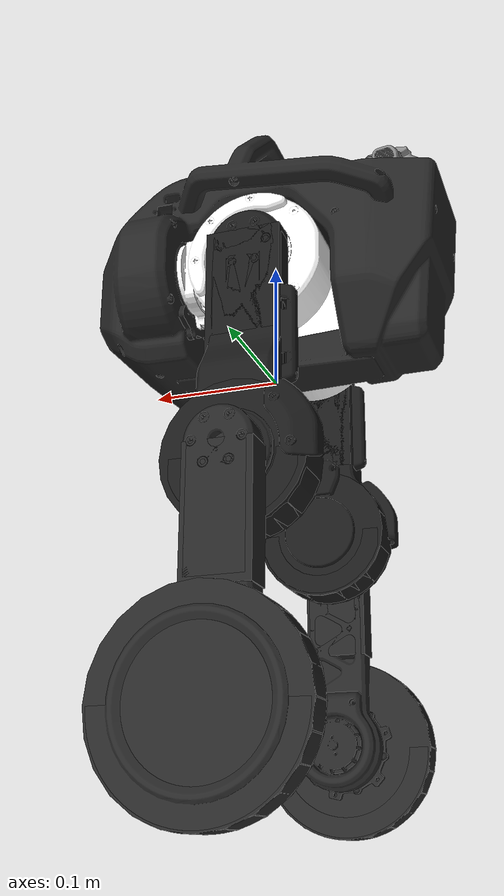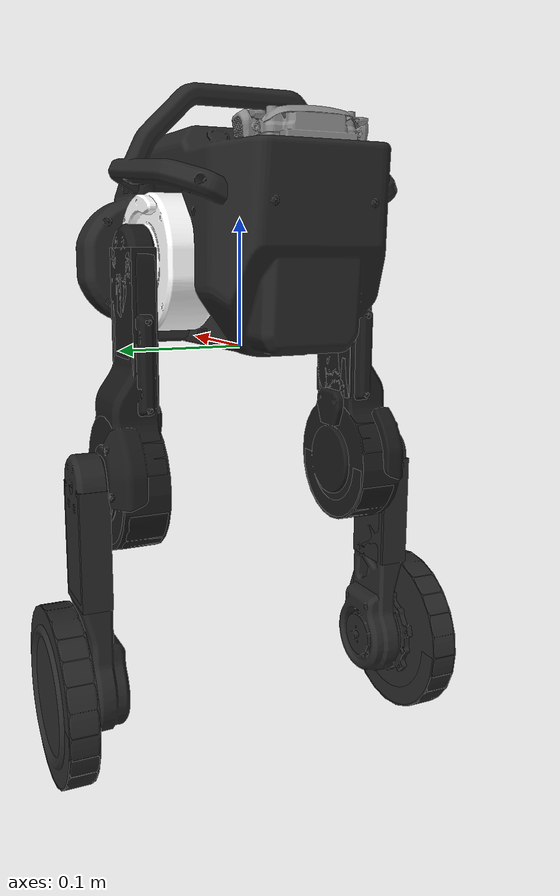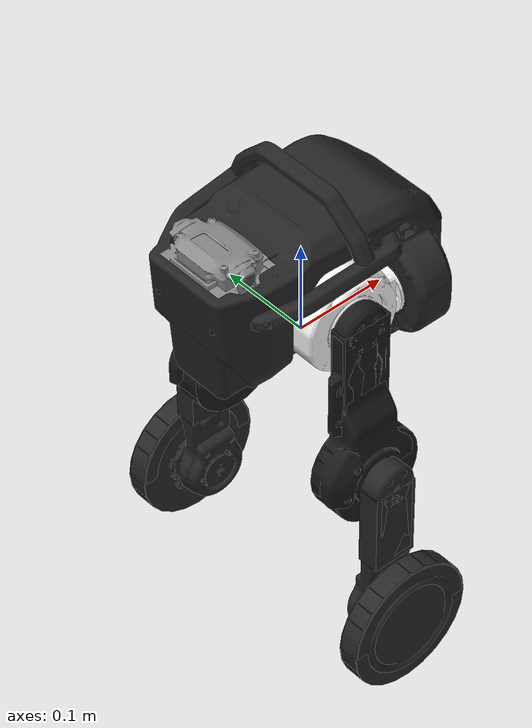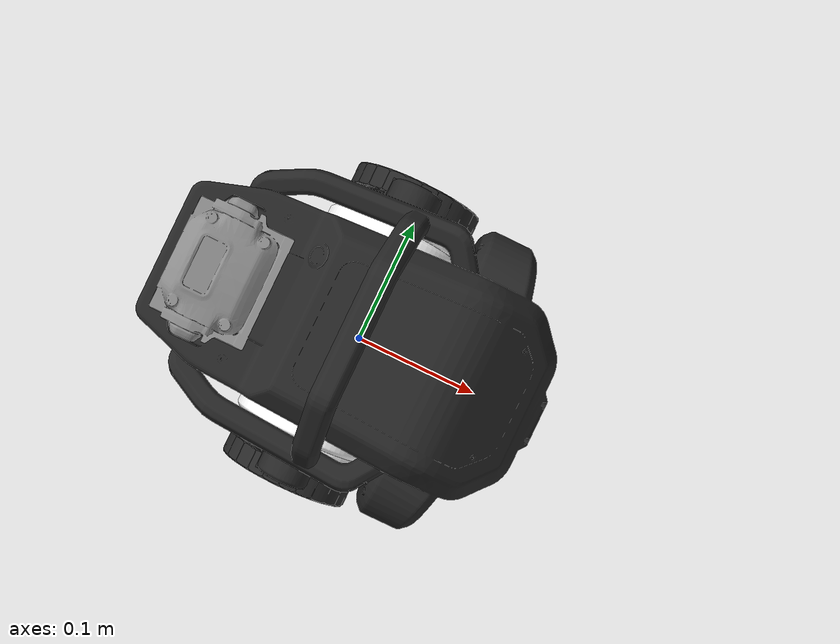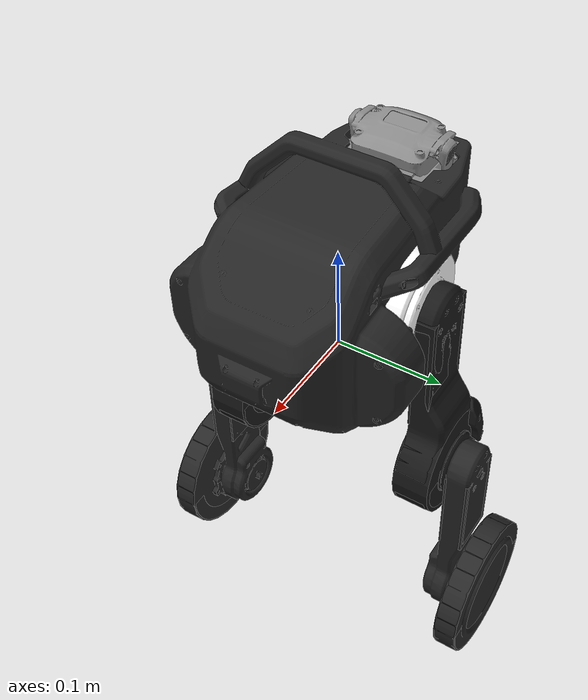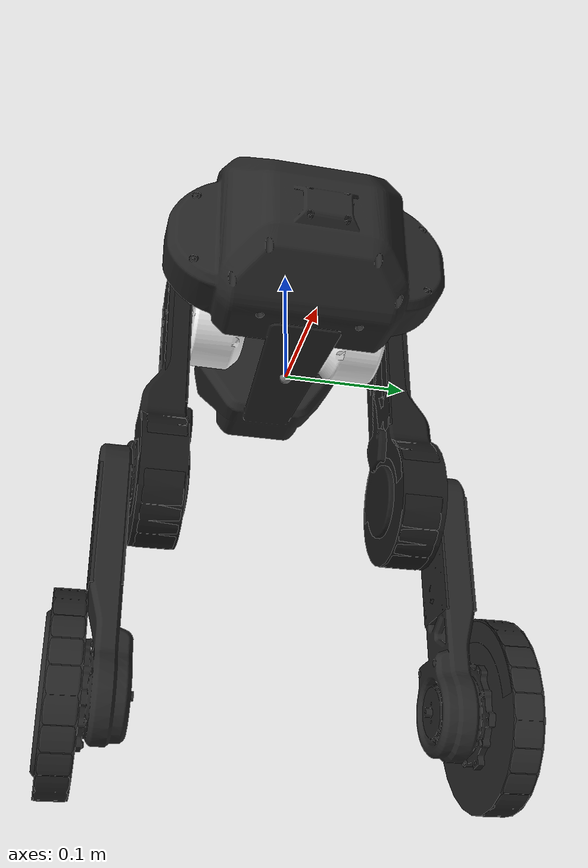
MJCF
<mujoco model="pineapple v1.1">
  <compiler angle="radian" meshdir="../meshes"/>

  <default>
      <default class="pineapple">
          <geom friction="0.4" margin="0.001" condim="1"/>
          <joint damping="0.1" armature="0.01" frictionloss="0.2"/>
          <motor ctrlrange="-23.7 23.7"/>
          <default class="l_hip">
              <joint axis="1 0 0" range="-0.52358 0.17444"/>
              <motor ctrlrange="-23.7 23.7"/>
          </default>
          <default class="r_hip">
              <joint axis="1 0 0" range="-0.17444 0.52358"/>
              <motor ctrlrange="-23.7 23.7"/>
          </default>
          <default class="thigh">
              <joint axis="0 1 0" range="0 1.57"/>
              <motor ctrlrange="-23.7 23.7"/>
          </default>
          <default class="calf">
              <joint axis="0 1 0" range="-3.141 0"/>
              <motor ctrlrange="-33.5 33.5"/>
          </default>
          <default class="visual">
              <geom type="mesh" contype="0" conaffinity="0" group="2"/>
          </default>
          <default class="collision">
              <geom group="3" type="mesh" rgba="1 0 0 0.3" />
              <default class="wheel">
              <geom size="0.022" priority="1" condim="6"
                  friction="0.8 0.02 0.01"/>
              </default>
          </default>
      </default>
  </default>
  <asset>
    <mesh name="base_link" file="base_link.STL"/>
    <mesh name="battery" file="battery.STL"/>
    <mesh name="R_hip" file="R_hip.STL"/>
    <mesh name="R_thigh" file="R_thigh.STL"/>
    <mesh name="R_calf" file="R_calf.STL"/>
    <mesh name="R_wheel" file="R_wheel.STL"/>
    <mesh name="L_hip" file="L_hip.STL"/>
    <mesh name="L_thigh" file="L_thigh.STL"/>
    <mesh name="L_calf" file="L_calf.STL"/>
    <mesh name="L_wheel" file="L_wheel.STL"/>
  </asset>

  <worldbody>
    <body name="base_link" pos="0 0 0" childclass="pineapple">
      <inertial pos="0.03425855 0.00006357 0.07778567" quat="1 0 0 0" mass="2.99" diaginertia="0.01519872 0.02158004 0.02428081" />
      <freejoint />
      <site name="imu" pos="0 0 0" />
      <geom type="mesh" contype="0" conaffinity="0" group="1" density="0" rgba="0.1451 0.1451 0.1451 1" mesh="base_link"/>
      <geom size="0.1275 0.05 0.05" pos="0.0075 0 0.05" type="box" rgba="0.1451 0.1451 0.1451 1" class='collision'/>
      <geom size="0.1065 0.0625 0.03" pos="-0.0285 0 0.13" type="box" rgba="0.1451 0.1451 0.1451 1" class='collision'/>
      <geom size="0.025 0.025 0.05" pos="0.078 -0.075 0.05" type="box" rgba="0.1451 0.1451 0.1451 1" class='collision'/>
      <geom size="0.025 0.025 0.05" pos="0.078 0.075 0.05" type="box" rgba="0.1451 0.1451 0.1451 1" class='collision'/>
      <body name="battery" pos="0 0 0">
        <inertial pos="-0.095007 -3.4328E-06 0.093415" quat="1 0 0 0" mass="0.64" diaginertia="0.00147269 0.00136181 0.00038215" />
        <geom type="mesh" contype="0" conaffinity="0" group="1" density="0" rgba="0.53725 0.53725 0.53725 1" mesh="battery"/>
      </body>
      <body name="L_hip" pos="0.047159 0.06125 0.066001">
        <inertial pos="-0.054201 -0.0016168 0.00050585" quat="0.490647 0.497517 0.49177 0.519524" mass="0.585" diaginertia="0.0007771 0.000509386 0.000459364"/>
        <joint name="L_hip_joint" class="l_hip"/>
        <geom type="mesh" contype="0" conaffinity="0" group="1" density="0" rgba="1 1 1 1" mesh="L_hip"/>
        <body name="L_thigh" pos="-0.05675 0.01995 0">
          <inertial pos="-0.0014005 0.015871 -0.13295" quat="0.72105 0.0195228 -0.0171635 0.692396" mass="0.911" diaginertia="0.00400787 0.00359172 0.000844534"/>
          <joint name="L_thigh_joint" class="thigh"/>
          <geom type="mesh" contype="0" conaffinity="0" group="1" density="0" rgba="0.098039 0.098039 0.098039 1" mesh="L_thigh"/>
          <geom size="0.0275 0.0095 0.06" pos="0.0003 0.0095 -0.049" type="box" rgba="0.098039 0.098039 0.098039 1"/>
          <geom size="0.0515 0.0175" pos="0 0.0175 -0.165" quat="0.707388 0.706825 0 0" type="cylinder" rgba="0.098039 0.098039 0.098039 1"/>
          <body name="L_calf" pos="0 0.0383 -0.165">
            <inertial pos="-7.3933e-05 0.014526 -0.11981" quat="0.705583 0.0107012 -0.0114919 0.708454" mass="0.567" diaginertia="0.00252293 0.00246258 0.000225094"/>
            <joint name="L_calf_joint" class="calf"/>
            <geom type="mesh" contype="0" conaffinity="0" group="1" density="0" rgba="0.1451 0.1451 0.1451 1" mesh="L_calf"/>
            <geom size="0.024 0.0118 0.0465" pos="-0.0006 0.0118 -0.0465" type="box" rgba="0.1451 0.1451 0.1451 1"/>
            <body name="L_wheel" pos="0 0.02705 -0.165">
              <inertial pos="2.7442e-11 0.0095126 -9.3096e-11" quat="0.707107 0 0 0.707107" mass="0.35" diaginertia="0.00108926 0.00056018 0.00056018"/>
              <joint name="L_wheel_joint" pos="0 0 0" axis="0 1 0"/>
              <geom type="mesh" contype="0" conaffinity="0" group="1" density="0" rgba="0.15294 0.15294 0.15294 1" mesh="L_wheel"/>
              <geom size="0.07 0.0115" pos="0 0.0085 0" quat="0.707388 0.706825 0 0" type="cylinder" rgba="0.15294 0.15294 0.15294 1"/>
            </body>
          </body>
        </body>
      </body>
      <body name="R_hip" pos="0.047159 -0.06125 0.066001">
        <inertial pos="-0.054201 0.0016168 0.00050585" quat="0.504876 0.506661 0.477895 0.509913" mass="0.585" diaginertia="0.000777096 0.000509412 0.000459342"/>
        <joint name="R_hip_joint" class="r_hip"/>
        <geom type="mesh" contype="0" conaffinity="0" group="1" density="0" rgba="1 1 1 1" mesh="R_hip"/>
        <body name="R_thigh" pos="-0.05675 -0.01995 0">
          <inertial pos="-0.0014005 -0.015871 -0.13295" quat="0.721549 0.0181713 -0.0185566 0.691876" mass="0.911" diaginertia="0.00400791 0.00359167 0.000844541"/>
          <joint name="R_thigh_joint" class="thigh"/>
          <geom type="mesh" contype="0" conaffinity="0" group="1" density="0" rgba="0.098039 0.098039 0.098039 1" mesh="R_thigh"/>
          <geom size="0.0275 0.0095 0.06" pos="0.0003 -0.0095 -0.049" type="box" rgba="0.098039 0.098039 0.098039 1"/>
          <geom size="0.0515 0.0175" pos="0 -0.0175 -0.165" quat="0.707388 0.706825 0 0" type="cylinder" rgba="0.098039 0.098039 0.098039 1"/>
          <body name="R_calf" pos="0 -0.0383 -0.165">
            <inertial pos="-7.3779e-05 -0.014526 -0.11981" quat="0.704705 0.0114318 -0.0107651 0.709327" mass="0.567" diaginertia="0.00252294 0.00246258 0.000225094"/>
            <joint name="R_calf_joint" class="calf"/>
            <geom type="mesh" contype="0" conaffinity="0" group="1" density="0" rgba="0.1451 0.1451 0.1451 1" mesh="R_calf"/>
            <geom size="0.024 0.0118 0.0465" pos="-0.0006 -0.0118 -0.0465" type="box" rgba="0.1451 0.1451 0.1451 1"/>
            <body name="R_wheel" pos="0 -0.02705 -0.165">
              <inertial pos="2.8013e-11 -0.0095126 -9.34e-11" quat="0.707107 0 0 0.707107" mass="0.35" diaginertia="0.00108926 0.00056018 0.00056018"/>
              <joint name="R_wheel_joint" pos="0 0 0" axis="0 1 0"/>
              <geom type="mesh" contype="0" conaffinity="0" group="1" density="0" rgba="0.15294 0.15294 0.15294 1" mesh="R_wheel"/>
              <geom size="0.07 0.0115" pos="0 -0.0085 0" quat="0.707388 0.706825 0 0" type="cylinder" rgba="0.15294 0.15294 0.15294 1"/>
            </body>
          </body>
        </body>
      </body>
    </body>
  </worldbody>

  <actuator>
    <motor class="l_hip" name="L_hip" joint="L_hip_joint" />
    <motor class="thigh" name="L_thigh" joint="L_thigh_joint" />
    <motor class="calf" name="L_calf" joint="L_calf_joint" />
    <motor ctrlrange="-3.69 3.69" name="L_wheel" joint="L_wheel_joint" />

    <motor class="r_hip" name="R_hip" joint="R_hip_joint" />
    <motor class="thigh" name="R_thigh" joint="R_thigh_joint" />
    <motor class="calf" name="R_calf" joint="R_calf_joint" />
    <motor ctrlrange="-3.69 3.69" name="R_wheel" joint="R_wheel_joint" />
  </actuator>

  <sensor>

      <jointpos name="L_hip_pos" joint="L_hip_joint" />
      <jointpos name="L_thigh_pos" joint="L_thigh_joint" />
      <jointpos name="L_calf_pos" joint="L_calf_joint" />
      <jointpos name="L_wheel_pos" joint="L_wheel_joint" />

      <jointpos name="R_hip_pos" joint="R_hip_joint" />
      <jointpos name="R_thigh_pos" joint="R_thigh_joint" />
      <jointpos name="R_calf_pos" joint="R_calf_joint" />
      <jointpos name="R_wheel_pos" joint="R_wheel_joint" />

      <jointvel name="L_hip_vel" joint="L_hip_joint" />
      <jointvel name="L_thigh_vel" joint="L_thigh_joint" />
      <jointvel name="L_calf_vel" joint="L_calf_joint" />
      <jointvel name="L_wheel_vel" joint="L_wheel_joint" noise="0.0"/>

      <jointvel name="R_hip_vel" joint="R_hip_joint" />
      <jointvel name="R_thigh_vel" joint="R_thigh_joint" />
      <jointvel name="R_calf_vel" joint="R_calf_joint" />
      <jointvel name="R_wheel_vel" joint="R_wheel_joint" noise="0.0"/>

      <jointactuatorfrc name="L_hip_torque" joint="L_hip_joint" noise="0.01" />
      <jointactuatorfrc name="L_thigh_torque" joint="L_thigh_joint" noise="0.01" />
      <jointactuatorfrc name="L_calf_torque" joint="L_calf_joint" noise="0.01" />
      <jointactuatorfrc name="L_wheel_torque" joint="L_wheel_joint" />

      <jointactuatorfrc name="R_hip_torque" joint="R_hip_joint" noise="0.01" />
      <jointactuatorfrc name="R_thigh_torque" joint="R_thigh_joint" noise="0.01" />
      <jointactuatorfrc name="R_calf_torque" joint="R_calf_joint" noise="0.01" />
      <jointactuatorfrc name="R_wheel_torque" joint="R_wheel_joint" />

      <framequat name="imu_quat" objtype="site" objname="imu" noise="0.0"/>
      <gyro name="imu_gyro" site="imu" noise="0.0"/>
      <accelerometer name="imu_acc" site="imu" />

      <framepos name="frame_pos" objtype="site" objname="imu" />
      <framelinvel name="frame_lin_vel" objtype="site" objname="imu" />
      <frameangvel name="frame_ang_vel" objtype="site" objname="imu" />
  </sensor>
</mujoco>
